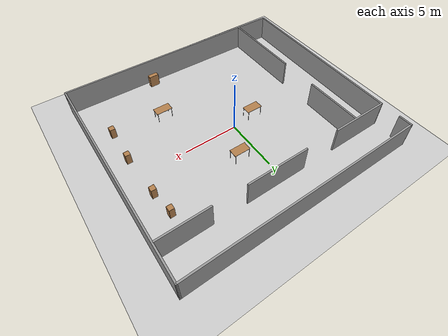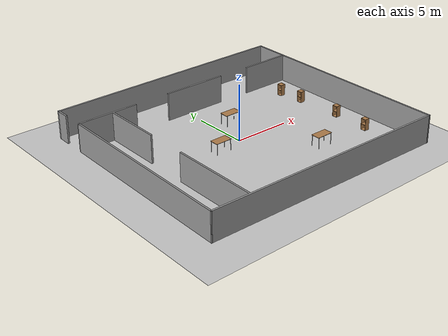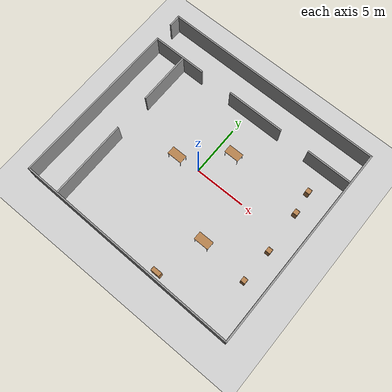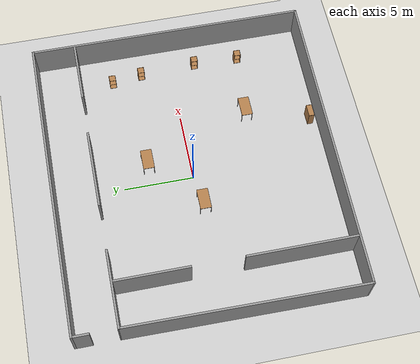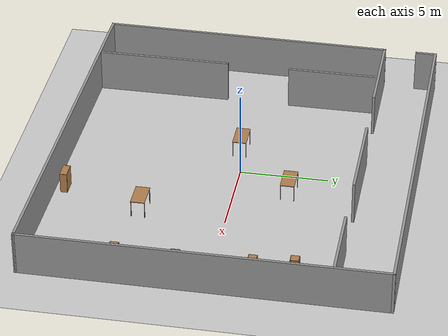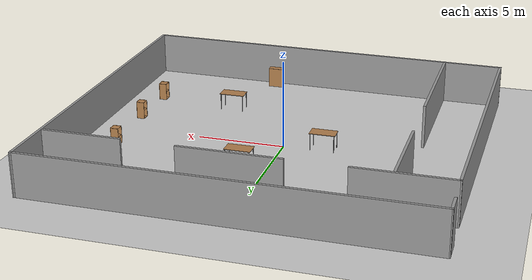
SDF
<sdf version="1.7">
 <world name="default">
  <light name="sun" type="directional">
   <pose>0 0 10 0 -0 0</pose>
   <diffuse>0.8 0.8 0.8 1</diffuse>
   <specular>0.2 0.2 0.2 1</specular>
   <attenuation>
    <range>1000</range>
    <constant>0.9</constant>
    <linear>0.01</linear>
    <quadratic>0.001</quadratic>
   </attenuation>
   <direction>-0.5 0.1 -0.9</direction>
   <spot><inner_angle>0</inner_angle><outer_angle>0</outer_angle><falloff>0</falloff></spot>
  </light>
  <model name="ground_plane">
   <static>1</static>
   <link name="link">
    <collision name="collision">
     <geometry><plane><normal>0 0 1</normal><size>100 100</size></plane></geometry>
     <surface>
      <contact><collide_bitmask>65535</collide_bitmask></contact>
      <friction><ode><mu>100</mu><mu2>50</mu2></ode></friction>
     </surface>
    </collision>
    <visual name="visual">
     <cast_shadows>0</cast_shadows>
     <geometry><plane><normal>0 0 1</normal><size>100 100</size></plane></geometry>
     <material>
      <script><uri>file://media/materials/scripts/gazebo.material</uri><name>Gazebo/Grey</name></script>
     </material>
    </visual>
   </link>
  </model>
  <gravity>0 0 -9.8</gravity>
  <magnetic_field>6e-06 2.3e-05 -4.2e-05</magnetic_field>
  <atmosphere type="adiabatic"/>
  <physics type="ode">
   <max_step_size>0.001</max_step_size>
   <real_time_factor>1</real_time_factor>
   <real_time_update_rate>1000</real_time_update_rate>
  </physics>
  <scene><ambient>0.4 0.4 0.4 1</ambient><background>0.7 0.7 0.7 1</background><shadows>1</shadows></scene>
  <spherical_coordinates>
   <surface_model>EARTH_WGS84</surface_model>
   <latitude_deg>0</latitude_deg>
   <longitude_deg>0</longitude_deg>
   <elevation>0</elevation>
   <heading_deg>0</heading_deg>
  </spherical_coordinates>
  <model name="sample_building">
   <pose>0.183239 -0.106892 0 0 -0 0</pose>
   <link name="Wall_13">
    <collision name="Wall_13_Collision">
     <geometry><box><size>5.5 0.15 2.5</size></box></geometry>
     <pose>0 0 1.25 0 -0 0</pose>
    </collision>
    <visual name="Wall_13_Visual">
     <pose>0 0 1.25 0 -0 0</pose>
     <geometry><box><size>5.5 0.15 2.5</size></box></geometry>
     <material>
      <script><uri>file://media/materials/scripts/gazebo.material</uri><name>Gazebo/Grey</name></script>
      <ambient>1 1 1 1</ambient>
     </material>
     <meta><layer>0</layer></meta>
    </visual>
    <pose>-8.20355 6.99639 0 0 -0 0</pose>
   </link>
   <link name="Wall_15">
    <collision name="Wall_15_Collision">
     <geometry><box><size>5.75 0.15 2.5</size></box></geometry>
     <pose>0 0 1.25 0 -0 0</pose>
    </collision>
    <visual name="Wall_15_Visual">
     <pose>0 0 1.25 0 -0 0</pose>
     <geometry><box><size>5.75 0.15 2.5</size></box></geometry>
     <material>
      <script><uri>file://media/materials/scripts/gazebo.material</uri><name>Gazebo/Grey</name></script>
      <ambient>1 1 1 1</ambient>
     </material>
     <meta><layer>0</layer></meta>
    </visual>
    <pose>0.667941 6.99639 0 0 -0 0</pose>
   </link>
   <link name="Wall_17">
    <collision name="Wall_17_Collision">
     <geometry><box><size>4.5 0.15 2.5</size></box></geometry>
     <pose>0 0 1.25 0 -0 0</pose>
    </collision>
    <visual name="Wall_17_Visual">
     <pose>0 0 1.25 0 -0 0</pose>
     <geometry><box><size>4.5 0.15 2.5</size></box></geometry>
     <material>
      <script><uri>file://media/materials/scripts/gazebo.material</uri><name>Gazebo/Grey</name></script>
      <ambient>1 1 1 1</ambient>
     </material>
     <meta><layer>0</layer></meta>
    </visual>
    <pose>8.78944 6.94987 0 0 -0 0</pose>
   </link>
   <link name="Wall_19">
    <collision name="Wall_19_Collision">
     <geometry><box><size>5.25 0.15 2.5</size></box></geometry>
     <pose>0 0 1.25 0 -0 0</pose>
    </collision>
    <visual name="Wall_19_Visual">
     <pose>0 0 1.25 0 -0 0</pose>
     <geometry><box><size>5.25 0.15 2.5</size></box></geometry>
     <material>
      <script><uri>file://media/materials/scripts/gazebo.material</uri><name>Gazebo/Grey</name></script>
      <ambient>1 1 1 1</ambient>
     </material>
     <meta><layer>0</layer></meta>
    </visual>
    <pose>-7.71493 4.30682 0 0 -0 -1.5708</pose>
   </link>
   <link name="Wall_21">
    <collision name="Wall_21_Collision">
     <geometry><box><size>7.75 0.15 2.5</size></box></geometry>
     <pose>0 0 1.25 0 -0 0</pose>
    </collision>
    <visual name="Wall_21_Visual">
     <pose>0 0 1.25 0 -0 0</pose>
     <geometry><box><size>7.75 0.15 2.5</size></box></geometry>
     <material>
      <script><uri>file://media/materials/scripts/gazebo.material</uri><name>Gazebo/Grey</name></script>
      <ambient>1 1 1 1</ambient>
     </material>
     <meta><layer>0</layer></meta>
    </visual>
    <pose>-7.71493 -5.82924 0 0 -0 -1.5708</pose>
   </link>
   <link name="Wall_23">
    <collision name="Wall_23_Collision">
     <geometry><box><size>16.8449 0.15 2.5</size></box></geometry>
     <pose>0 0 1.25 0 -0 0</pose>
    </collision>
    <visual name="Wall_23_Visual">
     <pose>0 0 1.25 0 -0 0</pose>
     <geometry><box><size>16.8449 0.15 2.5</size></box></geometry>
     <material>
      <script><uri>file://media/materials/scripts/gazebo.material</uri><name>Gazebo/Grey</name></script>
      <ambient>1 1 1 1</ambient>
     </material>
     <meta><layer>0</layer></meta>
    </visual>
    <pose>-10.9844 -1.35038 0 0 -0 1.55812</pose>
   </link>
   <link name="Wall_25">
    <collision name="Wall_25_Collision">
     <geometry><box><size>1.25 0.15 2.5</size></box></geometry>
     <pose>0 0 1.25 0 -0 0</pose>
    </collision>
    <visual name="Wall_25_Visual">
     <pose>0 0 1.25 0 -0 0</pose>
     <geometry><box><size>1.25 0.15 2.5</size></box></geometry>
     <material>
      <script><uri>file://media/materials/scripts/gazebo.material</uri><name>Gazebo/Grey</name></script>
      <ambient>1 1 1 1</ambient>
     </material>
     <meta><layer>0</layer></meta>
    </visual>
    <pose>-10.8811 9.48843 0 0 -0 -1.5708</pose>
   </link>
   <link name="Wall_5">
    <collision name="Wall_5_Collision">
     <geometry><box><size>22.1215 0.15 2.5</size></box></geometry>
     <pose>0 0 1.25 0 -0 0</pose>
    </collision>
    <visual name="Wall_5_Visual">
     <pose>0 0 1.25 0 -0 0</pose>
     <geometry><box><size>22.1215 0.15 2.5</size></box></geometry>
     <material>
      <script><uri>file://media/materials/scripts/gazebo.material</uri><name>Gazebo/Grey</name></script>
      <ambient>1 1 1 1</ambient>
     </material>
     <meta><layer>0</layer></meta>
    </visual>
    <pose>0.104555 10.0445 0 0 -0 0.000552</pose>
   </link>
   <link name="Wall_6">
    <collision name="Wall_6_Collision">
     <geometry><box><size>20.25 0.15 2.5</size></box></geometry>
     <pose>0 0 1.25 0 -0 0</pose>
    </collision>
    <visual name="Wall_6_Visual">
     <pose>0 0 1.25 0 -0 0</pose>
     <geometry><box><size>20.25 0.15 2.5</size></box></geometry>
     <material>
      <script><uri>file://media/materials/scripts/gazebo.material</uri><name>Gazebo/Grey</name></script>
      <ambient>1 1 1 1</ambient>
     </material>
     <meta><layer>0</layer></meta>
    </visual>
    <pose>11.0902 0.00057 0 0 -0 -1.5708</pose>
   </link>
   <link name="Wall_7">
    <collision name="Wall_7_Collision">
     <geometry><box><size>22.3333 0.15 2.5</size></box></geometry>
     <pose>0 0 1.25 0 -0 0</pose>
    </collision>
    <visual name="Wall_7_Visual">
     <pose>0 0 1.25 0 -0 0</pose>
     <geometry><box><size>22.3333 0.15 2.5</size></box></geometry>
     <material>
      <script><uri>file://media/materials/scripts/gazebo.material</uri><name>Gazebo/Grey</name></script>
      <ambient>1 1 1 1</ambient>
     </material>
     <meta><layer>0</layer></meta>
    </visual>
    <pose>-0 -9.87329 0 0 -0 3.12571</pose>
   </link>
   <static>1</static>
  </model>
  <model name="cabinet">
   <static>1</static>
   <link name="cabinet_bottom_plate">
    <inertial>
     <pose>0 0 -1 0 -0 0</pose>
     <inertia><ixx>2.05</ixx><ixy>0</ixy><ixz>0</ixz><iyy>2.05</iyy><iyz>0</iyz><izz>2.05</izz></inertia>
     <mass>25</mass>
    </inertial>
    <collision name="cabinet_bottom_plate_geom">
     <pose>0 0 0.01 0 -0 0</pose>
     <geometry><box><size>0.45 0.45 0.02</size></box></geometry>
    </collision>
    <visual name="cabinet_bottom_plate_geom_visual">
     <pose>0 0 0.01 0 -0 0</pose>
     <geometry><box><size>0.45 0.45 0.02</size></box></geometry>
     <material>
      <script><uri>file://media/materials/scripts/gazebo.material</uri><name>Gazebo/Wood</name></script>
     </material>
    </visual>
    <collision name="cabinet_bottom_plate_geom_cabinet_back_plate">
     <pose>0.235 0 0.51 0 -0 0</pose>
     <geometry><box><size>0.02 0.45 1.02</size></box></geometry>
    </collision>
    <visual name="cabinet_bottom_plate_geom_cabinet_back_plate_visual">
     <pose>0.235 0 0.51 0 -0 0</pose>
     <geometry><box><size>0.02 0.45 1.02</size></box></geometry>
     <material>
      <script><uri>file://media/materials/scripts/gazebo.material</uri><name>Gazebo/Wood</name></script>
     </material>
    </visual>
    <collision name="cabinet_bottom_plate_geom_cabinet_left_plate">
     <pose>0 0.235 0.51 0 -0 0</pose>
     <geometry><box><size>0.45 0.02 1.02</size></box></geometry>
    </collision>
    <visual name="cabinet_bottom_plate_geom_cabinet_left_plate_visual">
     <pose>0 0.235 0.51 0 -0 0</pose>
     <geometry><box><size>0.45 0.02 1.02</size></box></geometry>
     <material>
      <script><uri>file://media/materials/scripts/gazebo.material</uri><name>Gazebo/Wood</name></script>
     </material>
    </visual>
    <collision name="cabinet_bottom_plate_geom_cabinet_middle_plate">
     <pose>0 0 0.51 0 -0 0</pose>
     <geometry><box><size>0.45 0.45 0.02</size></box></geometry>
    </collision>
    <visual name="cabinet_bottom_plate_geom_cabinet_middle_plate_visual">
     <pose>0 0 0.51 0 -0 0</pose>
     <geometry><box><size>0.45 0.45 0.02</size></box></geometry>
     <material>
      <script><uri>file://media/materials/scripts/gazebo.material</uri><name>Gazebo/Wood</name></script>
     </material>
    </visual>
    <collision name="cabinet_bottom_plate_geom_cabinet_right_plate">
     <pose>0 -0.235 0.51 0 -0 0</pose>
     <geometry><box><size>0.45 0.02 1.02</size></box></geometry>
    </collision>
    <visual name="cabinet_bottom_plate_geom_cabinet_right_plate_visual">
     <pose>0 -0.235 0.51 0 -0 0</pose>
     <geometry><box><size>0.45 0.02 1.02</size></box></geometry>
     <material>
      <script><uri>file://media/materials/scripts/gazebo.material</uri><name>Gazebo/Wood</name></script>
     </material>
    </visual>
    <collision name="cabinet_bottom_plate_geom_cabinet_top_plate">
     <pose>0 0 1.01 0 -0 0</pose>
     <geometry><box><size>0.45 0.45 0.02</size></box></geometry>
    </collision>
    <visual name="cabinet_bottom_plate_geom_cabinet_top_plate_visual">
     <pose>0 0 1.01 0 -0 0</pose>
     <geometry><box><size>0.45 0.45 0.02</size></box></geometry>
     <material>
      <script><uri>file://media/materials/scripts/gazebo.material</uri><name>Gazebo/Wood</name></script>
     </material>
    </visual>
   </link>
   <pose>8.86156 4.46632 0 0 -0 0</pose>
  </model>
  <model name="cabinet_0">
   <static>1</static>
   <link name="cabinet_bottom_plate">
    <inertial>
     <pose>0 0 -1 0 -0 0</pose>
     <inertia><ixx>2.05</ixx><ixy>0</ixy><ixz>0</ixz><iyy>2.05</iyy><iyz>0</iyz><izz>2.05</izz></inertia>
     <mass>25</mass>
    </inertial>
    <collision name="cabinet_bottom_plate_geom">
     <pose>0 0 0.01 0 -0 0</pose>
     <geometry><box><size>0.45 0.45 0.02</size></box></geometry>
    </collision>
    <visual name="cabinet_bottom_plate_geom_visual">
     <pose>0 0 0.01 0 -0 0</pose>
     <geometry><box><size>0.45 0.45 0.02</size></box></geometry>
     <material>
      <script><uri>file://media/materials/scripts/gazebo.material</uri><name>Gazebo/Wood</name></script>
     </material>
    </visual>
    <collision name="cabinet_bottom_plate_geom_cabinet_back_plate">
     <pose>0.235 0 0.51 0 -0 0</pose>
     <geometry><box><size>0.02 0.45 1.02</size></box></geometry>
    </collision>
    <visual name="cabinet_bottom_plate_geom_cabinet_back_plate_visual">
     <pose>0.235 0 0.51 0 -0 0</pose>
     <geometry><box><size>0.02 0.45 1.02</size></box></geometry>
     <material>
      <script><uri>file://media/materials/scripts/gazebo.material</uri><name>Gazebo/Wood</name></script>
     </material>
    </visual>
    <collision name="cabinet_bottom_plate_geom_cabinet_left_plate">
     <pose>0 0.235 0.51 0 -0 0</pose>
     <geometry><box><size>0.45 0.02 1.02</size></box></geometry>
    </collision>
    <visual name="cabinet_bottom_plate_geom_cabinet_left_plate_visual">
     <pose>0 0.235 0.51 0 -0 0</pose>
     <geometry><box><size>0.45 0.02 1.02</size></box></geometry>
     <material>
      <script><uri>file://media/materials/scripts/gazebo.material</uri><name>Gazebo/Wood</name></script>
     </material>
    </visual>
    <collision name="cabinet_bottom_plate_geom_cabinet_middle_plate">
     <pose>0 0 0.51 0 -0 0</pose>
     <geometry><box><size>0.45 0.45 0.02</size></box></geometry>
    </collision>
    <visual name="cabinet_bottom_plate_geom_cabinet_middle_plate_visual">
     <pose>0 0 0.51 0 -0 0</pose>
     <geometry><box><size>0.45 0.45 0.02</size></box></geometry>
     <material>
      <script><uri>file://media/materials/scripts/gazebo.material</uri><name>Gazebo/Wood</name></script>
     </material>
    </visual>
    <collision name="cabinet_bottom_plate_geom_cabinet_right_plate">
     <pose>0 -0.235 0.51 0 -0 0</pose>
     <geometry><box><size>0.45 0.02 1.02</size></box></geometry>
    </collision>
    <visual name="cabinet_bottom_plate_geom_cabinet_right_plate_visual">
     <pose>0 -0.235 0.51 0 -0 0</pose>
     <geometry><box><size>0.45 0.02 1.02</size></box></geometry>
     <material>
      <script><uri>file://media/materials/scripts/gazebo.material</uri><name>Gazebo/Wood</name></script>
     </material>
    </visual>
    <collision name="cabinet_bottom_plate_geom_cabinet_top_plate">
     <pose>0 0 1.01 0 -0 0</pose>
     <geometry><box><size>0.45 0.45 0.02</size></box></geometry>
    </collision>
    <visual name="cabinet_bottom_plate_geom_cabinet_top_plate_visual">
     <pose>0 0 1.01 0 -0 0</pose>
     <geometry><box><size>0.45 0.45 0.02</size></box></geometry>
     <material>
      <script><uri>file://media/materials/scripts/gazebo.material</uri><name>Gazebo/Wood</name></script>
     </material>
    </visual>
   </link>
   <pose>9.17216 2.24247 0 0 -0 0</pose>
  </model>
  <model name="cabinet_1">
   <static>1</static>
   <link name="cabinet_bottom_plate">
    <inertial>
     <pose>0 0 -1 0 -0 0</pose>
     <inertia><ixx>2.05</ixx><ixy>0</ixy><ixz>0</ixz><iyy>2.05</iyy><iyz>0</iyz><izz>2.05</izz></inertia>
     <mass>25</mass>
    </inertial>
    <collision name="cabinet_bottom_plate_geom">
     <pose>0 0 0.01 0 -0 0</pose>
     <geometry><box><size>0.45 0.45 0.02</size></box></geometry>
    </collision>
    <visual name="cabinet_bottom_plate_geom_visual">
     <pose>0 0 0.01 0 -0 0</pose>
     <geometry><box><size>0.45 0.45 0.02</size></box></geometry>
     <material>
      <script><uri>file://media/materials/scripts/gazebo.material</uri><name>Gazebo/Wood</name></script>
     </material>
    </visual>
    <collision name="cabinet_bottom_plate_geom_cabinet_back_plate">
     <pose>0.235 0 0.51 0 -0 0</pose>
     <geometry><box><size>0.02 0.45 1.02</size></box></geometry>
    </collision>
    <visual name="cabinet_bottom_plate_geom_cabinet_back_plate_visual">
     <pose>0.235 0 0.51 0 -0 0</pose>
     <geometry><box><size>0.02 0.45 1.02</size></box></geometry>
     <material>
      <script><uri>file://media/materials/scripts/gazebo.material</uri><name>Gazebo/Wood</name></script>
     </material>
    </visual>
    <collision name="cabinet_bottom_plate_geom_cabinet_left_plate">
     <pose>0 0.235 0.51 0 -0 0</pose>
     <geometry><box><size>0.45 0.02 1.02</size></box></geometry>
    </collision>
    <visual name="cabinet_bottom_plate_geom_cabinet_left_plate_visual">
     <pose>0 0.235 0.51 0 -0 0</pose>
     <geometry><box><size>0.45 0.02 1.02</size></box></geometry>
     <material>
      <script><uri>file://media/materials/scripts/gazebo.material</uri><name>Gazebo/Wood</name></script>
     </material>
    </visual>
    <collision name="cabinet_bottom_plate_geom_cabinet_middle_plate">
     <pose>0 0 0.51 0 -0 0</pose>
     <geometry><box><size>0.45 0.45 0.02</size></box></geometry>
    </collision>
    <visual name="cabinet_bottom_plate_geom_cabinet_middle_plate_visual">
     <pose>0 0 0.51 0 -0 0</pose>
     <geometry><box><size>0.45 0.45 0.02</size></box></geometry>
     <material>
      <script><uri>file://media/materials/scripts/gazebo.material</uri><name>Gazebo/Wood</name></script>
     </material>
    </visual>
    <collision name="cabinet_bottom_plate_geom_cabinet_right_plate">
     <pose>0 -0.235 0.51 0 -0 0</pose>
     <geometry><box><size>0.45 0.02 1.02</size></box></geometry>
    </collision>
    <visual name="cabinet_bottom_plate_geom_cabinet_right_plate_visual">
     <pose>0 -0.235 0.51 0 -0 0</pose>
     <geometry><box><size>0.45 0.02 1.02</size></box></geometry>
     <material>
      <script><uri>file://media/materials/scripts/gazebo.material</uri><name>Gazebo/Wood</name></script>
     </material>
    </visual>
    <collision name="cabinet_bottom_plate_geom_cabinet_top_plate">
     <pose>0 0 1.01 0 -0 0</pose>
     <geometry><box><size>0.45 0.45 0.02</size></box></geometry>
    </collision>
    <visual name="cabinet_bottom_plate_geom_cabinet_top_plate_visual">
     <pose>0 0 1.01 0 -0 0</pose>
     <geometry><box><size>0.45 0.45 0.02</size></box></geometry>
     <material>
      <script><uri>file://media/materials/scripts/gazebo.material</uri><name>Gazebo/Wood</name></script>
     </material>
    </visual>
   </link>
   <pose>9.38851 -1.90676 0 0 -0 0</pose>
  </model>
  <model name="cabinet_2">
   <static>1</static>
   <link name="cabinet_bottom_plate">
    <inertial>
     <pose>0 0 -1 0 -0 0</pose>
     <inertia><ixx>2.05</ixx><ixy>0</ixy><ixz>0</ixz><iyy>2.05</iyy><iyz>0</iyz><izz>2.05</izz></inertia>
     <mass>25</mass>
    </inertial>
    <collision name="cabinet_bottom_plate_geom">
     <pose>0 0 0.01 0 -0 0</pose>
     <geometry><box><size>0.45 0.45 0.02</size></box></geometry>
    </collision>
    <visual name="cabinet_bottom_plate_geom_visual">
     <pose>0 0 0.01 0 -0 0</pose>
     <geometry><box><size>0.45 0.45 0.02</size></box></geometry>
     <material>
      <script><uri>file://media/materials/scripts/gazebo.material</uri><name>Gazebo/Wood</name></script>
     </material>
    </visual>
    <collision name="cabinet_bottom_plate_geom_cabinet_back_plate">
     <pose>0.235 0 0.51 0 -0 0</pose>
     <geometry><box><size>0.02 0.45 1.02</size></box></geometry>
    </collision>
    <visual name="cabinet_bottom_plate_geom_cabinet_back_plate_visual">
     <pose>0.235 0 0.51 0 -0 0</pose>
     <geometry><box><size>0.02 0.45 1.02</size></box></geometry>
     <material>
      <script><uri>file://media/materials/scripts/gazebo.material</uri><name>Gazebo/Wood</name></script>
     </material>
    </visual>
    <collision name="cabinet_bottom_plate_geom_cabinet_left_plate">
     <pose>0 0.235 0.51 0 -0 0</pose>
     <geometry><box><size>0.45 0.02 1.02</size></box></geometry>
    </collision>
    <visual name="cabinet_bottom_plate_geom_cabinet_left_plate_visual">
     <pose>0 0.235 0.51 0 -0 0</pose>
     <geometry><box><size>0.45 0.02 1.02</size></box></geometry>
     <material>
      <script><uri>file://media/materials/scripts/gazebo.material</uri><name>Gazebo/Wood</name></script>
     </material>
    </visual>
    <collision name="cabinet_bottom_plate_geom_cabinet_middle_plate">
     <pose>0 0 0.51 0 -0 0</pose>
     <geometry><box><size>0.45 0.45 0.02</size></box></geometry>
    </collision>
    <visual name="cabinet_bottom_plate_geom_cabinet_middle_plate_visual">
     <pose>0 0 0.51 0 -0 0</pose>
     <geometry><box><size>0.45 0.45 0.02</size></box></geometry>
     <material>
      <script><uri>file://media/materials/scripts/gazebo.material</uri><name>Gazebo/Wood</name></script>
     </material>
    </visual>
    <collision name="cabinet_bottom_plate_geom_cabinet_right_plate">
     <pose>0 -0.235 0.51 0 -0 0</pose>
     <geometry><box><size>0.45 0.02 1.02</size></box></geometry>
    </collision>
    <visual name="cabinet_bottom_plate_geom_cabinet_right_plate_visual">
     <pose>0 -0.235 0.51 0 -0 0</pose>
     <geometry><box><size>0.45 0.02 1.02</size></box></geometry>
     <material>
      <script><uri>file://media/materials/scripts/gazebo.material</uri><name>Gazebo/Wood</name></script>
     </material>
    </visual>
    <collision name="cabinet_bottom_plate_geom_cabinet_top_plate">
     <pose>0 0 1.01 0 -0 0</pose>
     <geometry><box><size>0.45 0.45 0.02</size></box></geometry>
    </collision>
    <visual name="cabinet_bottom_plate_geom_cabinet_top_plate_visual">
     <pose>0 0 1.01 0 -0 0</pose>
     <geometry><box><size>0.45 0.45 0.02</size></box></geometry>
     <material>
      <script><uri>file://media/materials/scripts/gazebo.material</uri><name>Gazebo/Wood</name></script>
     </material>
    </visual>
   </link>
   <pose>9.31032 -5.24219 0 0 -0 0</pose>
  </model>
  <model name="bookshelf">
   <static>1</static>
   <link name="link">
    <inertial><mass>1</mass></inertial>
    <collision name="back">
     <pose>0 0.005 0.6 0 -0 0</pose>
     <geometry><box><size>0.9 0.01 1.2</size></box></geometry>
    </collision>
    <visual name="visual1">
     <pose>0 0.005 0.6 0 -0 0</pose>
     <geometry><box><size>0.9 0.01 1.2</size></box></geometry>
     <material>
      <script><uri>file://media/materials/scripts/gazebo.material</uri><name>Gazebo/Wood</name></script>
     </material>
    </visual>
    <collision name="left_side">
     <pose>0.45 -0.195 0.6 0 -0 0</pose>
     <geometry><box><size>0.02 0.4 1.2</size></box></geometry>
    </collision>
    <visual name="visual2">
     <pose>0.45 -0.195 0.6 0 -0 0</pose>
     <geometry><box><size>0.02 0.4 1.2</size></box></geometry>
     <material>
      <script><uri>file://media/materials/scripts/gazebo.material</uri><name>Gazebo/Wood</name></script>
     </material>
    </visual>
    <collision name="right_side">
     <pose>-0.45 -0.195 0.6 0 -0 0</pose>
     <geometry><box><size>0.02 0.4 1.2</size></box></geometry>
    </collision>
    <visual name="visual3">
     <pose>-0.45 -0.195 0.6 0 -0 0</pose>
     <geometry><box><size>0.02 0.4 1.2</size></box></geometry>
     <material>
      <script><uri>file://media/materials/scripts/gazebo.material</uri><name>Gazebo/Wood</name></script>
     </material>
    </visual>
    <collision name="bottom">
     <pose>0 -0.195 0.03 0 -0 0</pose>
     <geometry><box><size>0.88 0.4 0.06</size></box></geometry>
    </collision>
    <visual name="visual4">
     <pose>0 -0.195 0.03 0 -0 0</pose>
     <geometry><box><size>0.88 0.4 0.06</size></box></geometry>
     <material>
      <script><uri>file://media/materials/scripts/gazebo.material</uri><name>Gazebo/Wood</name></script>
     </material>
    </visual>
    <collision name="top">
     <pose>0 -0.195 1.19 0 -0 0</pose>
     <geometry><box><size>0.88 0.4 0.02</size></box></geometry>
    </collision>
    <visual name="visual5">
     <pose>0 -0.195 1.19 0 -0 0</pose>
     <geometry><box><size>0.88 0.4 0.02</size></box></geometry>
     <material>
      <script><uri>file://media/materials/scripts/gazebo.material</uri><name>Gazebo/Wood</name></script>
     </material>
    </visual>
    <collision name="low_shelf">
     <pose>0 -0.195 0.43 0 -0 0</pose>
     <geometry><box><size>0.88 0.4 0.02</size></box></geometry>
    </collision>
    <visual name="visual6">
     <pose>0 -0.195 0.43 0 -0 0</pose>
     <geometry><box><size>0.88 0.4 0.02</size></box></geometry>
     <material>
      <script><uri>file://media/materials/scripts/gazebo.material</uri><name>Gazebo/Wood</name></script>
     </material>
    </visual>
    <collision name="high_shelf">
     <pose>0 -0.195 0.8 0 -0 0</pose>
     <geometry><box><size>0.88 0.4 0.02</size></box></geometry>
    </collision>
    <visual name="visual7">
     <pose>0 -0.195 0.8 0 -0 0</pose>
     <geometry><box><size>0.88 0.4 0.02</size></box></geometry>
     <material>
      <script><uri>file://media/materials/scripts/gazebo.material</uri><name>Gazebo/Wood</name></script>
     </material>
    </visual>
   </link>
   <pose>3.19344 -9.21339 0 0 -0 0</pose>
  </model>
  <model name="table">
   <static>1</static>
   <link name="link">
    <collision name="surface">
     <pose>0 0 1 0 -0 0</pose>
     <geometry><box><size>1.5 0.8 0.03</size></box></geometry>
     <surface><friction><ode><mu>0.6</mu><mu2>0.6</mu2></ode></friction></surface>
    </collision>
    <visual name="visual1">
     <pose>0 0 1 0 -0 0</pose>
     <geometry><box><size>1.5 0.8 0.03</size></box></geometry>
     <material>
      <script><uri>file://media/materials/scripts/gazebo.material</uri><name>Gazebo/Wood</name></script>
     </material>
    </visual>
    <collision name="front_left_leg">
     <pose>0.68 0.38 0.5 0 -0 0</pose>
     <geometry><cylinder><radius>0.02</radius><length>1</length></cylinder></geometry>
    </collision>
    <visual name="front_left_leg">
     <pose>0.68 0.38 0.5 0 -0 0</pose>
     <geometry><cylinder><radius>0.02</radius><length>1</length></cylinder></geometry>
     <material>
      <script><uri>file://media/materials/scripts/gazebo.material</uri><name>Gazebo/Grey</name></script>
     </material>
    </visual>
    <collision name="front_right_leg">
     <pose>0.68 -0.38 0.5 0 -0 0</pose>
     <geometry><cylinder><radius>0.02</radius><length>1</length></cylinder></geometry>
    </collision>
    <visual name="front_right_leg">
     <pose>0.68 -0.38 0.5 0 -0 0</pose>
     <geometry><cylinder><radius>0.02</radius><length>1</length></cylinder></geometry>
     <material>
      <script><uri>file://media/materials/scripts/gazebo.material</uri><name>Gazebo/Grey</name></script>
     </material>
    </visual>
    <collision name="back_right_leg">
     <pose>-0.68 -0.38 0.5 0 -0 0</pose>
     <geometry><cylinder><radius>0.02</radius><length>1</length></cylinder></geometry>
    </collision>
    <visual name="back_right_leg">
     <pose>-0.68 -0.38 0.5 0 -0 0</pose>
     <geometry><cylinder><radius>0.02</radius><length>1</length></cylinder></geometry>
     <material>
      <script><uri>file://media/materials/scripts/gazebo.material</uri><name>Gazebo/Grey</name></script>
     </material>
    </visual>
    <collision name="back_left_leg">
     <pose>-0.68 0.38 0.5 0 -0 0</pose>
     <geometry><cylinder><radius>0.02</radius><length>1</length></cylinder></geometry>
    </collision>
    <visual name="back_left_leg">
     <pose>-0.68 0.38 0.5 0 -0 0</pose>
     <geometry><cylinder><radius>0.02</radius><length>1</length></cylinder></geometry>
     <material>
      <script><uri>file://media/materials/scripts/gazebo.material</uri><name>Gazebo/Grey</name></script>
     </material>
    </visual>
   </link>
   <pose>1.59961 3.0288 0 0 -0 0</pose>
  </model>
  <model name="table_0">
   <static>1</static>
   <link name="link">
    <collision name="surface">
     <pose>0 0 1 0 -0 0</pose>
     <geometry><box><size>1.5 0.8 0.03</size></box></geometry>
     <surface><friction><ode><mu>0.6</mu><mu2>0.6</mu2></ode></friction></surface>
    </collision>
    <visual name="visual1">
     <pose>0 0 1 0 -0 0</pose>
     <geometry><box><size>1.5 0.8 0.03</size></box></geometry>
     <material>
      <script><uri>file://media/materials/scripts/gazebo.material</uri><name>Gazebo/Wood</name></script>
     </material>
    </visual>
    <collision name="front_left_leg">
     <pose>0.68 0.38 0.5 0 -0 0</pose>
     <geometry><cylinder><radius>0.02</radius><length>1</length></cylinder></geometry>
    </collision>
    <visual name="front_left_leg">
     <pose>0.68 0.38 0.5 0 -0 0</pose>
     <geometry><cylinder><radius>0.02</radius><length>1</length></cylinder></geometry>
     <material>
      <script><uri>file://media/materials/scripts/gazebo.material</uri><name>Gazebo/Grey</name></script>
     </material>
    </visual>
    <collision name="front_right_leg">
     <pose>0.68 -0.38 0.5 0 -0 0</pose>
     <geometry><cylinder><radius>0.02</radius><length>1</length></cylinder></geometry>
    </collision>
    <visual name="front_right_leg">
     <pose>0.68 -0.38 0.5 0 -0 0</pose>
     <geometry><cylinder><radius>0.02</radius><length>1</length></cylinder></geometry>
     <material>
      <script><uri>file://media/materials/scripts/gazebo.material</uri><name>Gazebo/Grey</name></script>
     </material>
    </visual>
    <collision name="back_right_leg">
     <pose>-0.68 -0.38 0.5 0 -0 0</pose>
     <geometry><cylinder><radius>0.02</radius><length>1</length></cylinder></geometry>
    </collision>
    <visual name="back_right_leg">
     <pose>-0.68 -0.38 0.5 0 -0 0</pose>
     <geometry><cylinder><radius>0.02</radius><length>1</length></cylinder></geometry>
     <material>
      <script><uri>file://media/materials/scripts/gazebo.material</uri><name>Gazebo/Grey</name></script>
     </material>
    </visual>
    <collision name="back_left_leg">
     <pose>-0.68 0.38 0.5 0 -0 0</pose>
     <geometry><cylinder><radius>0.02</radius><length>1</length></cylinder></geometry>
    </collision>
    <visual name="back_left_leg">
     <pose>-0.68 0.38 0.5 0 -0 0</pose>
     <geometry><cylinder><radius>0.02</radius><length>1</length></cylinder></geometry>
     <material>
      <script><uri>file://media/materials/scripts/gazebo.material</uri><name>Gazebo/Grey</name></script>
     </material>
    </visual>
   </link>
   <pose>-2.23492 -0.337798 0 0 -0 0</pose>
  </model>
  <model name="table_1">
   <static>1</static>
   <link name="link">
    <collision name="surface">
     <pose>0 0 1 0 -0 0</pose>
     <geometry><box><size>1.5 0.8 0.03</size></box></geometry>
     <surface><friction><ode><mu>0.6</mu><mu2>0.6</mu2></ode></friction></surface>
    </collision>
    <visual name="visual1">
     <pose>0 0 1 0 -0 0</pose>
     <geometry><box><size>1.5 0.8 0.03</size></box></geometry>
     <material>
      <script><uri>file://media/materials/scripts/gazebo.material</uri><name>Gazebo/Wood</name></script>
     </material>
    </visual>
    <collision name="front_left_leg">
     <pose>0.68 0.38 0.5 0 -0 0</pose>
     <geometry><cylinder><radius>0.02</radius><length>1</length></cylinder></geometry>
    </collision>
    <visual name="front_left_leg">
     <pose>0.68 0.38 0.5 0 -0 0</pose>
     <geometry><cylinder><radius>0.02</radius><length>1</length></cylinder></geometry>
     <material>
      <script><uri>file://media/materials/scripts/gazebo.material</uri><name>Gazebo/Grey</name></script>
     </material>
    </visual>
    <collision name="front_right_leg">
     <pose>0.68 -0.38 0.5 0 -0 0</pose>
     <geometry><cylinder><radius>0.02</radius><length>1</length></cylinder></geometry>
    </collision>
    <visual name="front_right_leg">
     <pose>0.68 -0.38 0.5 0 -0 0</pose>
     <geometry><cylinder><radius>0.02</radius><length>1</length></cylinder></geometry>
     <material>
      <script><uri>file://media/materials/scripts/gazebo.material</uri><name>Gazebo/Grey</name></script>
     </material>
    </visual>
    <collision name="back_right_leg">
     <pose>-0.68 -0.38 0.5 0 -0 0</pose>
     <geometry><cylinder><radius>0.02</radius><length>1</length></cylinder></geometry>
    </collision>
    <visual name="back_right_leg">
     <pose>-0.68 -0.38 0.5 0 -0 0</pose>
     <geometry><cylinder><radius>0.02</radius><length>1</length></cylinder></geometry>
     <material>
      <script><uri>file://media/materials/scripts/gazebo.material</uri><name>Gazebo/Grey</name></script>
     </material>
    </visual>
    <collision name="back_left_leg">
     <pose>-0.68 0.38 0.5 0 -0 0</pose>
     <geometry><cylinder><radius>0.02</radius><length>1</length></cylinder></geometry>
    </collision>
    <visual name="back_left_leg">
     <pose>-0.68 0.38 0.5 0 -0 0</pose>
     <geometry><cylinder><radius>0.02</radius><length>1</length></cylinder></geometry>
     <material>
      <script><uri>file://media/materials/scripts/gazebo.material</uri><name>Gazebo/Grey</name></script>
     </material>
    </visual>
   </link>
   <pose>4.57092 -4.82152 0 0 -0 0</pose>
  </model>
 </world>
</sdf>
